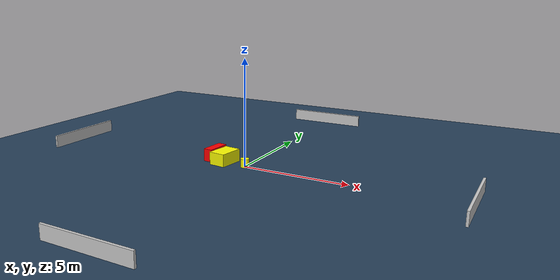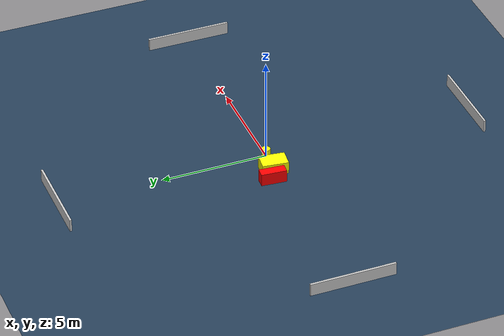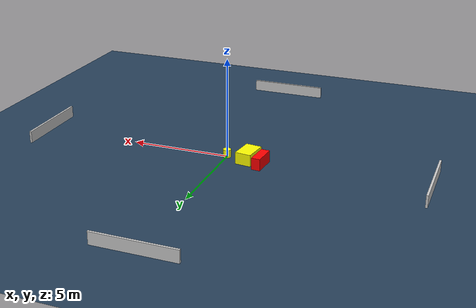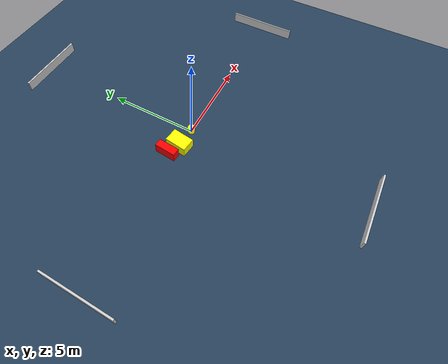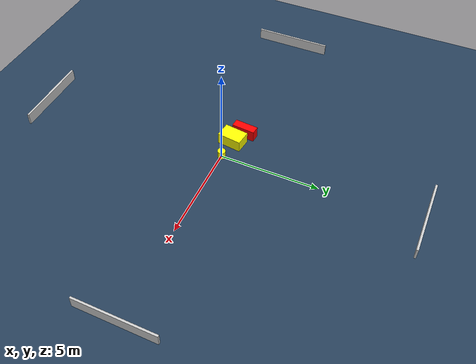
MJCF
<?xml version="1.0" ?>
<mujoco model="generated_environment">
  <option timestep="0.01" integrator="RK4" cone="elliptic"/>
  <default>
    <geom density="1"/>
  </default>
  <asset>
    <texture builtin="gradient" height="3072" name="skybox" rgb1="0.3 0.5 0.7" rgb2="0 0 0" type="skybox" width="512"/>
    <texture builtin="checker" height="300" name="groundplane" rgb1="0.2 0.3 0.4" rgb2="0.1 0.2 0.3" type="2d" width="300"/>
    <material name="groundplane" reflectance="0.2" texrepeat="5 5" texture="groundplane"/>
  </asset>
  <worldbody>
    <light dir="0 0 -1" directional="true" pos="0 0 1.5"/>
    <geom condim="3" friction="0.5 0.005 0.001" material="groundplane" name="floor" pos="0 0 0" size="0 0 0.05" type="plane"/>
    <body name="walls">
      <geom name="wall_1" condim="4" pos="-10.0 0.0 0.3" rgba="0.800000011920929 0.800000011920929 0.800000011920929 1.0" size="0.05 2.0 0.3" type="box"/>
      <geom name="wall_2" condim="4" pos="10.0 0.0 0.3" rgba="0.800000011920929 0.800000011920929 0.800000011920929 1.0" size="0.05 2.0 0.3" type="box"/>
      <geom name="wall_3" condim="4" pos="0.0 -10.0 0.3" rgba="0.800000011920929 0.800000011920929 0.800000011920929 1.0" size="2.0 0.05 0.3" type="box"/>
      <geom name="wall_4" condim="4" pos="0.0 10.0 0.3" rgba="0.800000011920929 0.800000011920929 0.800000011920929 1.0" size="2.0 0.05 0.3" type="box"/>
    </body>
    <body name="robot">
      <joint name="joint_x" type="slide" pos="0 0 0" axis="1 0 0"/>
      <joint name="joint_y" type="slide" pos="0 0 0" axis="0 1 0"/>
      <geom name="robot" type="cylinder" pos="0.0 0.0 0.2" size="0.2 0.2 0.0" mass="5.0" friction="1.0 0.005 0.0001" condim="4" rgba="1.0 1.0 0.0 1.0"/>
    </body>
    <body name="obstacle_1_movable">
      <geom name="obstacle_1_movable" condim="4" pos="-1.1446628008438875 0.09536137904022925 0.3" euler="0 0 262.86649536000493" friction="0.0 0.005 0.001" rgba="1.0 1.0 0.0 1.0" size="0.6077485223080507 0.40160359293845893 0.3" type="box" mass="0.1"/>
      <joint type="free"/>
    </body>
    <body name="obstacle_2_static">
      <geom name="obstacle_2_static" condim="4" pos="-1.8858547819725915 0.43099792699335576 0.3" euler="0 0 265.40276345284536" friction="0.0 0.005 0.001" rgba="1.0 0.0 0.0 1.0" size="0.5945368484681658 0.21846875789016199 0.3" type="box"/>
    </body>
  </worldbody>
  <actuator>
    <motor name="actuator_x" joint="joint_x" gear="1" ctrlrange="-1 1"/>
    <motor name="actuator_y" joint="joint_y" gear="1" ctrlrange="-1 1"/>
  </actuator>
</mujoco>
